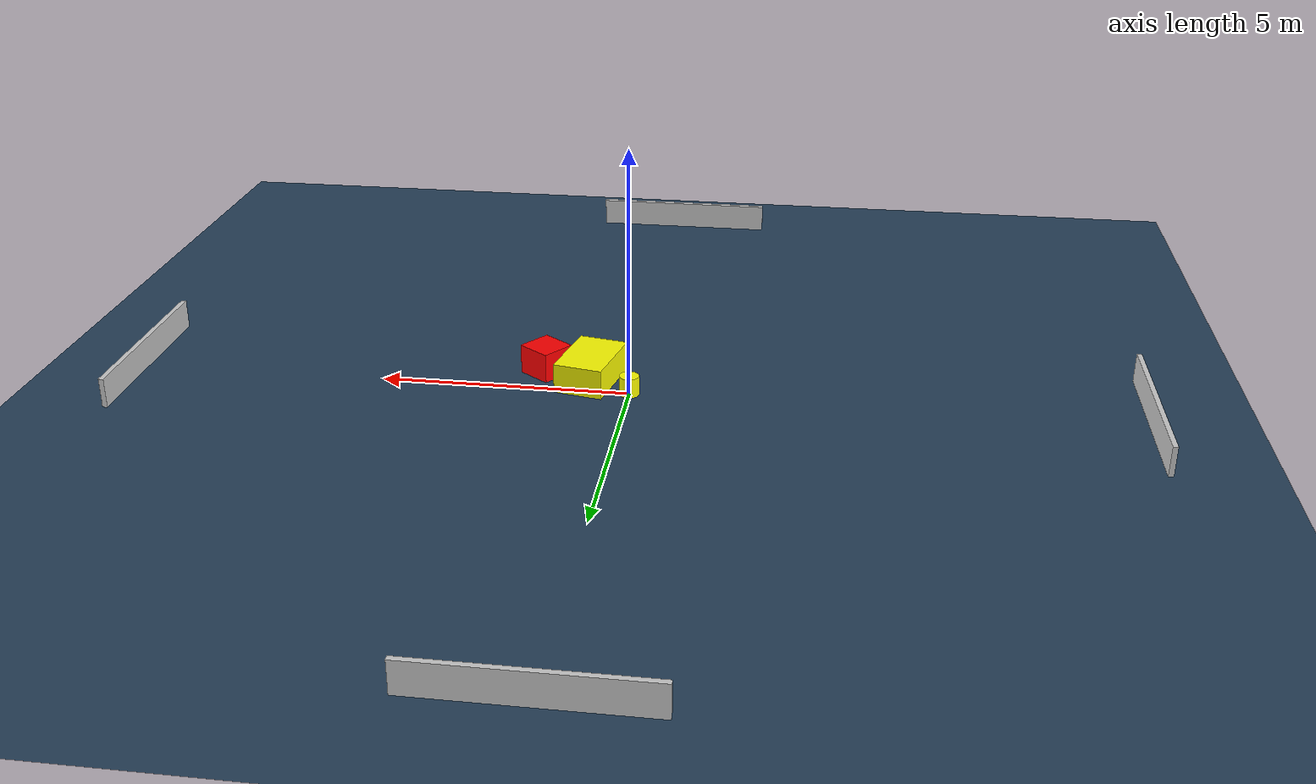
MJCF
<?xml version="1.0" ?>
<mujoco model="generated_environment">
  <option timestep="0.01" integrator="RK4" cone="elliptic"/>
  <default>
    <geom density="1"/>
  </default>
  <asset>
    <texture builtin="gradient" height="3072" name="skybox" rgb1="0.3 0.5 0.7" rgb2="0 0 0" type="skybox" width="512"/>
    <texture builtin="checker" height="300" name="groundplane" rgb1="0.2 0.3 0.4" rgb2="0.1 0.2 0.3" type="2d" width="300"/>
    <material name="groundplane" reflectance="0.2" texrepeat="5 5" texture="groundplane"/>
  </asset>
  <worldbody>
    <light dir="0 0 -1" directional="true" pos="0 0 1.5"/>
    <geom condim="3" friction="0.5 0.005 0.001" material="groundplane" name="floor" pos="0 0 0" size="0 0 0.05" type="plane"/>
    <body name="walls">
      <geom name="wall_1" condim="4" pos="-10.0 0.0 0.3" rgba="0.800000011920929 0.800000011920929 0.800000011920929 1.0" size="0.05 2.0 0.3" type="box"/>
      <geom name="wall_2" condim="4" pos="10.0 0.0 0.3" rgba="0.800000011920929 0.800000011920929 0.800000011920929 1.0" size="0.05 2.0 0.3" type="box"/>
      <geom name="wall_3" condim="4" pos="0.0 -10.0 0.3" rgba="0.800000011920929 0.800000011920929 0.800000011920929 1.0" size="2.0 0.05 0.3" type="box"/>
      <geom name="wall_4" condim="4" pos="0.0 10.0 0.3" rgba="0.800000011920929 0.800000011920929 0.800000011920929 1.0" size="2.0 0.05 0.3" type="box"/>
    </body>
    <body name="robot">
      <joint name="joint_x" type="slide" pos="0 0 0" axis="1 0 0"/>
      <joint name="joint_y" type="slide" pos="0 0 0" axis="0 1 0"/>
      <geom name="robot" type="cylinder" pos="0.0 0.0 0.2" size="0.2 0.2 0.0" mass="5.0" friction="1.0 0.005 0.0001" condim="4" rgba="1.0 1.0 0.0 1.0"/>
    </body>
    <body name="obstacle_1_movable">
      <geom name="obstacle_1_movable" condim="4" pos="0.8472890322357535 -0.5104445980284893 0.3" euler="0 0 78.26560819091169" friction="0.0 0.005 0.001" rgba="1.0 1.0 0.0 1.0" size="0.7540408794055988 0.4997972814252906 0.3" type="box" mass="0.1"/>
      <joint type="free"/>
    </body>
    <body name="obstacle_2_static">
      <geom name="obstacle_2_static" condim="4" pos="1.8036794582694682 -0.7811428860197471 0.3" euler="0 0 323.2323992239211" friction="0.0 0.005 0.001" rgba="1.0 0.0 0.0 1.0" size="0.3670051878459949 0.35664827350800676 0.3" type="box"/>
    </body>
  </worldbody>
  <actuator>
    <motor name="actuator_x" joint="joint_x" gear="1" ctrlrange="-1 1"/>
    <motor name="actuator_y" joint="joint_y" gear="1" ctrlrange="-1 1"/>
  </actuator>
</mujoco>
